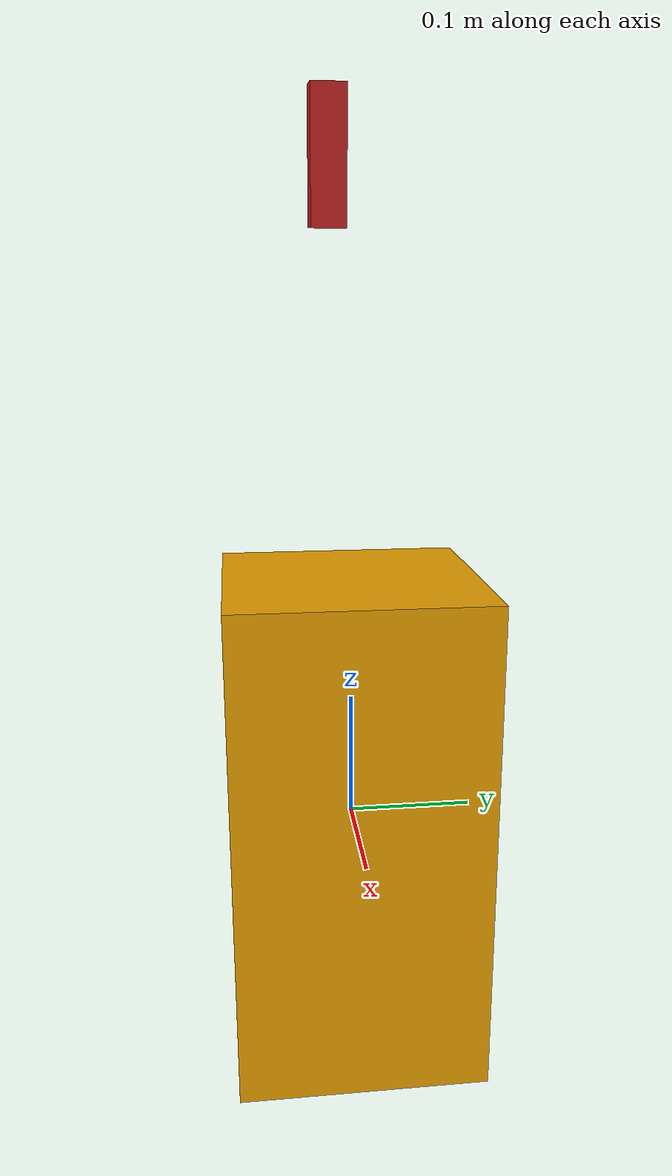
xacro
<?xml version="1.0"?>
<robot name="mr_camera" xmlns:xacro="http://www.ros.org/wiki/xacro">
    <xacro:include filename="macros.xacro"/>

    <xacro:arg name="camera_name" default="camera_in_alice_wonderland" />
    <xacro:arg name="camera_x" default="0" />
    <xacro:arg name="camera_y" default="0" />
    <xacro:arg name="camera_yaw" default="0" />

    <link name="$(arg camera_name)_base_link">
        <visual>
            <origin xyz="0 0 0" rpy="0 0 0"/>
            <geometry>
                <box size="0.2 0.2 0.4"/>
            </geometry>
        </visual>
        <collision>
            <origin xyz="0 0 0" rpy="0 0 0"/>
            <geometry>
                <box size="0.2 0.2 0.4"/>
            </geometry>
        </collision>
        <inertial>
          <mass value="0.2" />
          <origin xyz="0 0 0" rpy="0 0 0"/>
          <xacro:box_inertia mass="0.2" x="0.2" y="0.2" z="0.4"/>
        </inertial>
    </link>

    <joint name="$(arg camera_name)_joint" type="fixed">
        <parent link="$(arg camera_name)_base_link"/>
        <child link="$(arg camera_name)_link"/>
        <origin xyz="0 0 0.5" rpy="0 0.1 0"/>
    </joint>

    <link name="$(arg camera_name)_link">
        <visual>
            <origin xyz="${d435_cam_mount_from_center_offset} ${-d435_cam_depth_py} 0" rpy="${pi/2} 0 ${pi/2}"/>
            <geometry>
              <box size="${d435_cam_depth} ${d435_cam_width} ${d435_cam_height}"/>
            </geometry>
        </visual>
        <collision>
            <origin xyz="0 ${-d435_cam_depth_py} 0" rpy="0 0 0"/>
            <geometry>
              <box size="${d435_cam_depth} ${d435_cam_width} ${d435_cam_height}"/>
            </geometry>
        </collision>
        <inertial>
          <mass value="${d435_cam_mass}" />
          <origin xyz="0 ${-d435_cam_depth_py} 0" rpy="0 0 0"/>
          <xacro:box_inertia mass="${d435_cam_mass}" x="${d435_cam_depth}" y="${d435_cam_width}" z="${d435_cam_height}"/>
        </inertial>
    </link>

    <joint name="$(arg camera_name)_optical_joint" type="fixed">
        <parent link="$(arg camera_name)_link"/>
        <child link="$(arg camera_name)_link_optical"/>
        <origin xyz="0 0 0.2" rpy="${-pi/2} 0 ${-pi/2}"/>
    </joint>

    <link name="$(arg camera_name)_link_optical"></link>

    <gazebo reference="$(arg camera_name)_link">
        <material>Gazebo/Red</material>
        <sensor name="$(arg camera_name)" type="depth">
            <pose> 0 0 0 0 0 0 </pose>
            <visualize>true</visualize>
            <update_rate>10</update_rate>
            <camera>
                <horizontal_fov>1.089</horizontal_fov>
                <image>
                    <width>640</width>
                    <height>480</height>
                </image>
                <clip>
                    <near>0.05</near>
                    <far>8.0</far>
                </clip>
            </camera>
            <plugin name="$(arg camera_name)_controller" filename="libgazebo_ros_camera.so">
                <frame_name>$(arg camera_name)_link_optical</frame_name>
                <ros>
                   <imageTopicName>$(arg camera_name)</imageTopicName>
                   <cameraInfoTopicName>/$(arg camera_name)/camera_info</cameraInfoTopicName>
                   <depthImageTopicName>/$(arg camera_name)/depth_image</depthImageTopicName>
                   <pointCloudTopicName>/$(arg camera_name)/pointcloud</pointCloudTopicName>
                   <useDepth16UC1Format>true</useDepth16UC1Format>
                </ros>
                <min_depth>0.1</min_depth>
                <max_depth>10.0</max_depth>
            </plugin>
        </sensor>
    </gazebo>
</robot>

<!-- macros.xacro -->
<robot xmlns:xacro="http://www.ros.org/wiki/xacro">
    <xacro:property name="d435_cam_depth_to_left_ir_offset" value="0.0"/>
    <xacro:property name="d435_cam_depth_to_right_ir_offset" value="-0.050"/>
    <xacro:property name="d435_cam_depth_to_color_offset" value="0.015"/>
    <xacro:property name="d435_cam_width" value="0.090"/>
    <xacro:property name="d435_cam_height" value="0.025"/>
    <xacro:property name="d435_cam_depth" value="0.02505"/>
    <xacro:property name="d435_cam_mass" value="0.564"/>
    <xacro:property name="d435_cam_mount_from_center_offset" value="0.0149"/>
    <xacro:property name="d435_cam_depth_px" value="${d435_cam_mount_from_center_offset}"/>
    <xacro:property name="d435_cam_depth_py" value="0.0175"/>
    <xacro:property name="d435_cam_depth_pz" value="${d435_cam_height/2}"/>

    <xacro:macro name="box_inertia" params="mass x y z">
        <inertia ixx="${(1/12) * mass * (y*y+z*z)}" ixy="0.0" ixz="0.0"
                iyy="${(1/12) * mass * (x*x+z*z)}" iyz="0.0"
                izz="${(1/12) * mass * (x*x+y*y)}" />
    </xacro:macro>
</robot>
